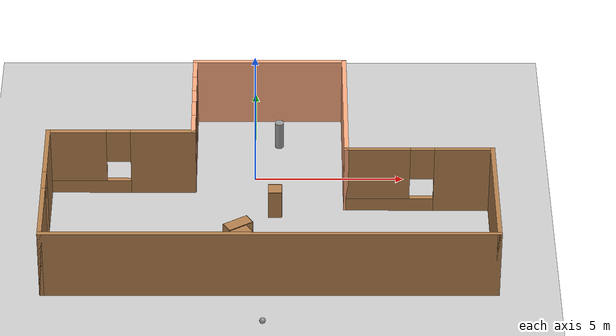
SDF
<sdf version="1.6">
 <world name="default">
  <plugin name="project1" filename="libproject1.so"/>
  <light name="sun" type="directional">
   <pose>0 0 10 0 -0 0</pose>
   <diffuse>0.8 0.8 0.8 1</diffuse>
   <specular>0.1 0.1 0.1 1</specular>
   <attenuation>
    <range>1000</range>
    <constant>0.9</constant>
    <linear>0.01</linear>
    <quadratic>0.001</quadratic>
   </attenuation>
   <direction>-0.5 0.5 -1</direction>
  </light>
  <model name="ground_plane">
   <static>1</static>
   <link name="link">
    <collision name="collision">
     <geometry><plane><normal>0 0 1</normal><size>100 100</size></plane></geometry>
     <surface><friction><ode><mu>100</mu><mu2>50</mu2></ode></friction></surface>
    </collision>
    <visual name="visual">
     <cast_shadows>0</cast_shadows>
     <geometry><plane><normal>0 0 1</normal><size>100 100</size></plane></geometry>
     <material>
      <script><uri>file://media/materials/scripts/gazebo.material</uri><name>Gazebo/Grey</name></script>
     </material>
    </visual>
   </link>
  </model>
  <gravity>0 0 -9.8</gravity>
  <magnetic_field>6e-06 2.3e-05 -4.2e-05</magnetic_field>
  <atmosphere type="adiabatic"/>
  <physics name="default_physics" default="0" type="ode">
   <max_step_size>0.001</max_step_size>
   <real_time_factor>1</real_time_factor>
   <real_time_update_rate>1000</real_time_update_rate>
  </physics>
  <scene><ambient>0.4 0.4 0.4 1</ambient><background>0.7 0.7 0.7 1</background><shadows>1</shadows></scene>
  <spherical_coordinates>
   <surface_model>EARTH_WGS84</surface_model>
   <latitude_deg>0</latitude_deg>
   <longitude_deg>0</longitude_deg>
   <elevation>0</elevation>
   <heading_deg>0</heading_deg>
  </spherical_coordinates>
  <model name="mybuilding">
   <pose>0.47861 -1.41522 0 0 -0 0</pose>
   <link name="Wall_13">
    <collision name="Wall_13_Collision">
     <geometry><box><size>4.75 0.15 2.5</size></box></geometry>
     <pose>0 0 1.25 0 -0 0</pose>
    </collision>
    <visual name="Wall_13_Visual">
     <pose>0 0 1.25 0 -0 0</pose>
     <geometry><box><size>4.75 0.15 2.5</size></box></geometry>
     <material>
      <script><uri>file://media/materials/scripts/gazebo.material</uri><name>Gazebo/Wood</name></script>
      <ambient>1 1 1 1</ambient>
     </material>
    </visual>
    <pose>7.4 -2.55 0 0 -0 1.5708</pose>
   </link>
   <link name="Wall_14">
    <pose>4.975 -0.25 0 0 -0 3.14159</pose>
    <visual name="Wall_14_Visual_0">
     <pose>-1.4975 0 1.25 0 -0 0</pose>
     <geometry><box><size>2.005 0.15 2.5</size></box></geometry>
     <material>
      <script><uri>file://media/materials/scripts/gazebo.material</uri><name>Gazebo/Wood</name></script>
      <ambient>1 1 1 1</ambient>
     </material>
    </visual>
    <collision name="Wall_14_Collision_0">
     <geometry><box><size>2.005 0.15 2.5</size></box></geometry>
     <pose>-1.4975 0 1.25 0 -0 0</pose>
    </collision>
    <visual name="Wall_14_Visual_1">
     <pose>1.0025 0 0.25 0 -0 0</pose>
     <geometry><box><size>2.995 0.15 0.5</size></box></geometry>
     <material>
      <script><uri>file://media/materials/scripts/gazebo.material</uri><name>Gazebo/Wood</name></script>
      <ambient>1 1 1 1</ambient>
     </material>
    </visual>
    <collision name="Wall_14_Collision_1">
     <geometry><box><size>2.995 0.15 0.5</size></box></geometry>
     <pose>1.0025 0 0.25 0 -0 0</pose>
    </collision>
    <visual name="Wall_14_Visual_2">
     <pose>1.4025 0 1.5 0 -0 0</pose>
     <geometry><box><size>2.195 0.15 2</size></box></geometry>
     <material>
      <script><uri>file://media/materials/scripts/gazebo.material</uri><name>Gazebo/Wood</name></script>
      <ambient>1 1 1 1</ambient>
     </material>
    </visual>
    <collision name="Wall_14_Collision_2">
     <geometry><box><size>2.195 0.15 2</size></box></geometry>
     <pose>1.4025 0 1.5 0 -0 0</pose>
    </collision>
    <visual name="Wall_14_Visual_3">
     <pose>-0.095 0 1.9 0 -0 0</pose>
     <geometry><box><size>0.8 0.15 1.2</size></box></geometry>
     <material>
      <script><uri>file://media/materials/scripts/gazebo.material</uri><name>Gazebo/Wood</name></script>
      <ambient>1 1 1 1</ambient>
     </material>
    </visual>
    <collision name="Wall_14_Collision_3">
     <geometry><box><size>0.8 0.15 1.2</size></box></geometry>
     <pose>-0.095 0 1.9 0 -0 0</pose>
    </collision>
   </link>
   <link name="Wall_18">
    <collision name="Wall_18_Collision">
     <geometry><box><size>5.25 0.15 2.5</size></box></geometry>
     <pose>0 0 1.25 0 -0 0</pose>
    </collision>
    <visual name="Wall_18_Visual">
     <pose>0 0 1.25 0 -0 0</pose>
     <geometry><box><size>5.25 0.15 2.5</size></box></geometry>
     <material>
      <script><uri>file://media/materials/scripts/gazebo.material</uri><name>Gazebo/Grey</name></script>
      <ambient>1 0.666667 0.498039 1</ambient>
     </material>
    </visual>
    <pose>2.55 2.3 0 0 -0 1.5708</pose>
   </link>
   <link name="Wall_21">
    <collision name="Wall_21_Collision">
     <geometry><box><size>5.25 0.15 2.5</size></box></geometry>
     <pose>0 0 1.25 0 -0 0</pose>
    </collision>
    <visual name="Wall_21_Visual">
     <pose>0 0 1.25 0 -0 0</pose>
     <geometry><box><size>5.25 0.15 2.5</size></box></geometry>
     <material>
      <script><uri>file://media/materials/scripts/gazebo.material</uri><name>Gazebo/Grey</name></script>
      <ambient>1 0.666667 0.498039 1</ambient>
     </material>
    </visual>
    <pose>0 4.85 0 0 -0 3.14159</pose>
   </link>
   <link name="Wall_23">
    <pose>-2.55 2.8 0 0 0 -1.5708</pose>
    <visual name="Wall_23_Visual_0">
     <pose>-1.6175 0 1.25 0 -0 0</pose>
     <geometry><box><size>1.015 0.15 2.5</size></box></geometry>
     <material>
      <script><uri>file://media/materials/scripts/gazebo.material</uri><name>Gazebo/Grey</name></script>
      <ambient>1 0.666667 0.498039 1</ambient>
     </material>
    </visual>
    <collision name="Wall_23_Collision_0">
     <geometry><box><size>1.015 0.15 2.5</size></box></geometry>
     <pose>-1.6175 0 1.25 0 -0 0</pose>
    </collision>
    <visual name="Wall_23_Visual_1">
     <pose>0.5075 0 0.25 0 -0 0</pose>
     <geometry><box><size>3.235 0.15 0.5</size></box></geometry>
     <material>
      <script><uri>file://media/materials/scripts/gazebo.material</uri><name>Gazebo/Grey</name></script>
      <ambient>1 0.666667 0.498039 1</ambient>
     </material>
    </visual>
    <collision name="Wall_23_Collision_1">
     <geometry><box><size>3.235 0.15 0.5</size></box></geometry>
     <pose>0.5075 0 0.25 0 -0 0</pose>
    </collision>
    <visual name="Wall_23_Visual_2">
     <pose>0.015 0 1.5 0 -0 0</pose>
     <geometry><box><size>0.65 0.15 2</size></box></geometry>
     <material>
      <script><uri>file://media/materials/scripts/gazebo.material</uri><name>Gazebo/Grey</name></script>
      <ambient>1 0.666667 0.498039 1</ambient>
     </material>
    </visual>
    <collision name="Wall_23_Collision_2">
     <geometry><box><size>0.65 0.15 2</size></box></geometry>
     <pose>0.015 0 1.5 0 -0 0</pose>
    </collision>
    <visual name="Wall_23_Visual_3">
     <pose>1.6325 0 1.5 0 -0 0</pose>
     <geometry><box><size>0.985 0.15 2</size></box></geometry>
     <material>
      <script><uri>file://media/materials/scripts/gazebo.material</uri><name>Gazebo/Grey</name></script>
      <ambient>1 0.666667 0.498039 1</ambient>
     </material>
    </visual>
    <collision name="Wall_23_Collision_3">
     <geometry><box><size>0.985 0.15 2</size></box></geometry>
     <pose>1.6325 0 1.5 0 -0 0</pose>
    </collision>
    <visual name="Wall_23_Visual_4">
     <pose>-0.71 0 1.9 0 -0 0</pose>
     <geometry><box><size>0.8 0.15 1.2</size></box></geometry>
     <material>
      <script><uri>file://media/materials/scripts/gazebo.material</uri><name>Gazebo/Grey</name></script>
      <ambient>1 0.666667 0.498039 1</ambient>
     </material>
    </visual>
    <collision name="Wall_23_Collision_4">
     <geometry><box><size>0.8 0.15 1.2</size></box></geometry>
     <pose>-0.71 0 1.9 0 -0 0</pose>
    </collision>
    <visual name="Wall_23_Visual_5">
     <pose>0.74 0 1.9 0 -0 0</pose>
     <geometry><box><size>0.8 0.15 1.2</size></box></geometry>
     <material>
      <script><uri>file://media/materials/scripts/gazebo.material</uri><name>Gazebo/Grey</name></script>
      <ambient>1 0.666667 0.498039 1</ambient>
     </material>
    </visual>
    <collision name="Wall_23_Collision_5">
     <geometry><box><size>0.8 0.15 1.2</size></box></geometry>
     <pose>0.74 0 1.9 0 -0 0</pose>
    </collision>
   </link>
   <link name="Wall_29">
    <pose>-4.975 0.75 0 0 -0 3.14159</pose>
    <visual name="Wall_29_Visual_0">
     <pose>-1.4075 0 1.25 0 -0 0</pose>
     <geometry><box><size>2.185 0.15 2.5</size></box></geometry>
     <material>
      <script><uri>file://media/materials/scripts/gazebo.material</uri><name>Gazebo/Wood</name></script>
      <ambient>1 1 1 1</ambient>
     </material>
    </visual>
    <collision name="Wall_29_Collision_0">
     <geometry><box><size>2.185 0.15 2.5</size></box></geometry>
     <pose>-1.4075 0 1.25 0 -0 0</pose>
    </collision>
    <visual name="Wall_29_Visual_1">
     <pose>1.0925 0 0.25 0 -0 0</pose>
     <geometry><box><size>2.815 0.15 0.5</size></box></geometry>
     <material>
      <script><uri>file://media/materials/scripts/gazebo.material</uri><name>Gazebo/Wood</name></script>
      <ambient>1 1 1 1</ambient>
     </material>
    </visual>
    <collision name="Wall_29_Collision_1">
     <geometry><box><size>2.815 0.15 0.5</size></box></geometry>
     <pose>1.0925 0 0.25 0 -0 0</pose>
    </collision>
    <visual name="Wall_29_Visual_2">
     <pose>1.4925 0 1.5 0 -0 0</pose>
     <geometry><box><size>2.015 0.15 2</size></box></geometry>
     <material>
      <script><uri>file://media/materials/scripts/gazebo.material</uri><name>Gazebo/Wood</name></script>
      <ambient>1 1 1 1</ambient>
     </material>
    </visual>
    <collision name="Wall_29_Collision_2">
     <geometry><box><size>2.015 0.15 2</size></box></geometry>
     <pose>1.4925 0 1.5 0 -0 0</pose>
    </collision>
    <visual name="Wall_29_Visual_3">
     <pose>0.085 0 1.9 0 -0 0</pose>
     <geometry><box><size>0.8 0.15 1.2</size></box></geometry>
     <material>
      <script><uri>file://media/materials/scripts/gazebo.material</uri><name>Gazebo/Wood</name></script>
      <ambient>1 1 1 1</ambient>
     </material>
    </visual>
    <collision name="Wall_29_Collision_3">
     <geometry><box><size>0.8 0.15 1.2</size></box></geometry>
     <pose>0.085 0 1.9 0 -0 0</pose>
    </collision>
   </link>
   <link name="Wall_30">
    <pose>-7.4 -2.05 0 0 0 -1.5708</pose>
    <visual name="Wall_30_Visual_0">
     <pose>-1.6925 0 1.25 0 -0 0</pose>
     <geometry><box><size>2.365 0.15 2.5</size></box></geometry>
     <material>
      <script><uri>file://media/materials/scripts/gazebo.material</uri><name>Gazebo/Wood</name></script>
      <ambient>1 1 1 1</ambient>
     </material>
    </visual>
    <collision name="Wall_30_Collision_0">
     <geometry><box><size>2.365 0.15 2.5</size></box></geometry>
     <pose>-1.6925 0 1.25 0 -0 0</pose>
    </collision>
    <visual name="Wall_30_Visual_1">
     <pose>1.6325 0 1.25 0 -0 0</pose>
     <geometry><box><size>2.485 0.15 2.5</size></box></geometry>
     <material>
      <script><uri>file://media/materials/scripts/gazebo.material</uri><name>Gazebo/Wood</name></script>
      <ambient>1 1 1 1</ambient>
     </material>
    </visual>
    <collision name="Wall_30_Collision_1">
     <geometry><box><size>2.485 0.15 2.5</size></box></geometry>
     <pose>1.6325 0 1.25 0 -0 0</pose>
    </collision>
    <visual name="Wall_30_Visual_2">
     <pose>-0.06 0 2.25 0 -0 0</pose>
     <geometry><box><size>0.9 0.15 0.5</size></box></geometry>
     <material>
      <script><uri>file://media/materials/scripts/gazebo.material</uri><name>Gazebo/Wood</name></script>
      <ambient>1 1 1 1</ambient>
     </material>
    </visual>
    <collision name="Wall_30_Collision_2">
     <geometry><box><size>0.9 0.15 0.5</size></box></geometry>
     <pose>-0.06 0 2.25 0 -0 0</pose>
    </collision>
   </link>
   <link name="Wall_31">
    <collision name="Wall_31_Collision">
     <geometry><box><size>14.95 0.15 2.5</size></box></geometry>
     <pose>0 0 1.25 0 -0 0</pose>
    </collision>
    <visual name="Wall_31_Visual">
     <pose>0 0 1.25 0 -0 0</pose>
     <geometry><box><size>14.95 0.15 2.5</size></box></geometry>
     <material>
      <script><uri>file://media/materials/scripts/gazebo.material</uri><name>Gazebo/Wood</name></script>
      <ambient>1 1 1 1</ambient>
     </material>
    </visual>
    <pose>0 -4.85 0 0 -0 0</pose>
   </link>
   <static>1</static>
  </model>
  <model name="cabinet">
   <static>1</static>
   <link name="cabinet_bottom_plate">
    <inertial>
     <pose>0 0 -1 0 -0 0</pose>
     <inertia><ixx>2.05</ixx><ixy>0</ixy><ixz>0</ixz><iyy>2.05</iyy><iyz>0</iyz><izz>2.05</izz></inertia>
     <mass>25</mass>
    </inertial>
    <collision name="cabinet_bottom_plate_geom">
     <pose>0 0 0.01 0 -0 0</pose>
     <geometry><box><size>0.45 0.45 0.02</size></box></geometry>
    </collision>
    <visual name="cabinet_bottom_plate_geom_visual">
     <pose>0 0 0.01 0 -0 0</pose>
     <geometry><box><size>0.45 0.45 0.02</size></box></geometry>
     <material>
      <script><uri>file://media/materials/scripts/gazebo.material</uri><name>Gazebo/Wood</name></script>
     </material>
    </visual>
    <collision name="cabinet_bottom_plate_geom_cabinet_back_plate">
     <pose>0.235 0 0.51 0 -0 0</pose>
     <geometry><box><size>0.02 0.45 1.02</size></box></geometry>
    </collision>
    <visual name="cabinet_bottom_plate_geom_cabinet_back_plate_visual">
     <pose>0.235 0 0.51 0 -0 0</pose>
     <geometry><box><size>0.02 0.45 1.02</size></box></geometry>
     <material>
      <script><uri>file://media/materials/scripts/gazebo.material</uri><name>Gazebo/Wood</name></script>
     </material>
    </visual>
    <collision name="cabinet_bottom_plate_geom_cabinet_left_plate">
     <pose>0 0.235 0.51 0 -0 0</pose>
     <geometry><box><size>0.45 0.02 1.02</size></box></geometry>
    </collision>
    <visual name="cabinet_bottom_plate_geom_cabinet_left_plate_visual">
     <pose>0 0.235 0.51 0 -0 0</pose>
     <geometry><box><size>0.45 0.02 1.02</size></box></geometry>
     <material>
      <script><uri>file://media/materials/scripts/gazebo.material</uri><name>Gazebo/Wood</name></script>
     </material>
    </visual>
    <collision name="cabinet_bottom_plate_geom_cabinet_middle_plate">
     <pose>0 0 0.51 0 -0 0</pose>
     <geometry><box><size>0.45 0.45 0.02</size></box></geometry>
    </collision>
    <visual name="cabinet_bottom_plate_geom_cabinet_middle_plate_visual">
     <pose>0 0 0.51 0 -0 0</pose>
     <geometry><box><size>0.45 0.45 0.02</size></box></geometry>
     <material>
      <script><uri>file://media/materials/scripts/gazebo.material</uri><name>Gazebo/Wood</name></script>
     </material>
    </visual>
    <collision name="cabinet_bottom_plate_geom_cabinet_right_plate">
     <pose>0 -0.235 0.51 0 -0 0</pose>
     <geometry><box><size>0.45 0.02 1.02</size></box></geometry>
    </collision>
    <visual name="cabinet_bottom_plate_geom_cabinet_right_plate_visual">
     <pose>0 -0.235 0.51 0 -0 0</pose>
     <geometry><box><size>0.45 0.02 1.02</size></box></geometry>
     <material>
      <script><uri>file://media/materials/scripts/gazebo.material</uri><name>Gazebo/Wood</name></script>
     </material>
    </visual>
    <collision name="cabinet_bottom_plate_geom_cabinet_top_plate">
     <pose>0 0 1.01 0 -0 0</pose>
     <geometry><box><size>0.45 0.45 0.02</size></box></geometry>
    </collision>
    <visual name="cabinet_bottom_plate_geom_cabinet_top_plate_visual">
     <pose>0 0 1.01 0 -0 0</pose>
     <geometry><box><size>0.45 0.45 0.02</size></box></geometry>
     <material>
      <script><uri>file://media/materials/scripts/gazebo.material</uri><name>Gazebo/Wood</name></script>
     </material>
    </visual>
   </link>
   <pose>0.654918 -1.88828 0 0 -0 0</pose>
  </model>
  <model name="bookshelf">
   <static>1</static>
   <link name="link">
    <inertial><mass>1</mass></inertial>
    <collision name="back">
     <pose>0 0.005 0.6 0 -0 0</pose>
     <geometry><box><size>0.9 0.01 1.2</size></box></geometry>
    </collision>
    <visual name="visual1">
     <pose>0 0.005 0.6 0 -0 0</pose>
     <geometry><box><size>0.9 0.01 1.2</size></box></geometry>
     <material>
      <script><uri>file://media/materials/scripts/gazebo.material</uri><name>Gazebo/Wood</name></script>
     </material>
    </visual>
    <collision name="left_side">
     <pose>0.45 -0.195 0.6 0 -0 0</pose>
     <geometry><box><size>0.02 0.4 1.2</size></box></geometry>
    </collision>
    <visual name="visual2">
     <pose>0.45 -0.195 0.6 0 -0 0</pose>
     <geometry><box><size>0.02 0.4 1.2</size></box></geometry>
     <material>
      <script><uri>file://media/materials/scripts/gazebo.material</uri><name>Gazebo/Wood</name></script>
     </material>
    </visual>
    <collision name="right_side">
     <pose>-0.45 -0.195 0.6 0 -0 0</pose>
     <geometry><box><size>0.02 0.4 1.2</size></box></geometry>
    </collision>
    <visual name="visual3">
     <pose>-0.45 -0.195 0.6 0 -0 0</pose>
     <geometry><box><size>0.02 0.4 1.2</size></box></geometry>
     <material>
      <script><uri>file://media/materials/scripts/gazebo.material</uri><name>Gazebo/Wood</name></script>
     </material>
    </visual>
    <collision name="bottom">
     <pose>0 -0.195 0.03 0 -0 0</pose>
     <geometry><box><size>0.88 0.4 0.06</size></box></geometry>
    </collision>
    <visual name="visual4">
     <pose>0 -0.195 0.03 0 -0 0</pose>
     <geometry><box><size>0.88 0.4 0.06</size></box></geometry>
     <material>
      <script><uri>file://media/materials/scripts/gazebo.material</uri><name>Gazebo/Wood</name></script>
     </material>
    </visual>
    <collision name="top">
     <pose>0 -0.195 1.19 0 -0 0</pose>
     <geometry><box><size>0.88 0.4 0.02</size></box></geometry>
    </collision>
    <visual name="visual5">
     <pose>0 -0.195 1.19 0 -0 0</pose>
     <geometry><box><size>0.88 0.4 0.02</size></box></geometry>
     <material>
      <script><uri>file://media/materials/scripts/gazebo.material</uri><name>Gazebo/Wood</name></script>
     </material>
    </visual>
    <collision name="low_shelf">
     <pose>0 -0.195 0.43 0 -0 0</pose>
     <geometry><box><size>0.88 0.4 0.02</size></box></geometry>
    </collision>
    <visual name="visual6">
     <pose>0 -0.195 0.43 0 -0 0</pose>
     <geometry><box><size>0.88 0.4 0.02</size></box></geometry>
     <material>
      <script><uri>file://media/materials/scripts/gazebo.material</uri><name>Gazebo/Wood</name></script>
     </material>
    </visual>
    <collision name="high_shelf">
     <pose>0 -0.195 0.8 0 -0 0</pose>
     <geometry><box><size>0.88 0.4 0.02</size></box></geometry>
    </collision>
    <visual name="visual7">
     <pose>0 -0.195 0.8 0 -0 0</pose>
     <geometry><box><size>0.88 0.4 0.02</size></box></geometry>
     <material>
      <script><uri>file://media/materials/scripts/gazebo.material</uri><name>Gazebo/Wood</name></script>
     </material>
    </visual>
   </link>
   <pose>-0.661056 -3.84447 0 0 -0 0.551219</pose>
  </model>
  <model name="my_ball">
   <link name="link_0">
    <inertial>
     <mass>1</mass>
     <inertia><ixx>0.1</ixx><ixy>0</ixy><ixz>0</ixz><iyy>0.1</iyy><iyz>0</iyz><izz>0.1</izz></inertia>
    </inertial>
    <visual name="visual">
     <geometry><sphere><radius>0.1</radius></sphere></geometry>
     <material>
      <lighting>1</lighting>
      <script><uri>file://media/materials/scripts/gazebo.material</uri><name>Gazebo/Grey</name></script>
      <ambient>1 1 1 1</ambient>
      <diffuse>1 1 1 1</diffuse>
      <specular>1 1 1 1</specular>
      <emissive>1 1 1 1</emissive>
      <shader type="vertex"><normal_map>__default__</normal_map></shader>
     </material>
    </visual>
    <collision name="collision">
     <geometry><sphere><radius>0.1</radius></sphere></geometry>
     <surface>
      <friction>
       <ode><mu>1</mu><mu2>1</mu2><fdir1>0 0 0</fdir1><slip1>0</slip1><slip2>0</slip2></ode>
       <torsional>
        <coefficient>1</coefficient>
        <patch_radius>0</patch_radius>
        <surface_radius>0</surface_radius>
        <use_patch_radius>1</use_patch_radius>
        <ode><slip>0</slip></ode>
       </torsional>
      </friction>
      <bounce><restitution_coefficient>0</restitution_coefficient><threshold>1e+06</threshold></bounce>
      <contact>
       <collide_without_contact>0</collide_without_contact>
       <collide_without_contact_bitmask>1</collide_without_contact_bitmask>
       <collide_bitmask>1</collide_bitmask>
       <ode>
        <soft_cfm>0</soft_cfm>
        <soft_erp>0.2</soft_erp>
        <kp>1e+13</kp>
        <kd>1</kd>
        <max_vel>0.01</max_vel>
        <min_depth>0</min_depth>
       </ode>
       <bullet>
        <split_impulse>1</split_impulse>
        <split_impulse_penetration_threshold>-0.01</split_impulse_penetration_threshold>
        <soft_cfm>0</soft_cfm>
        <soft_erp>0.2</soft_erp>
        <kp>1e+13</kp>
        <kd>1</kd>
       </bullet>
      </contact>
     </surface>
    </collision>
   </link>
   <static>0</static>
   <pose>0.254329 -7.74627 0.1 0 -0 0</pose>
  </model>
  <model name="unit_cylinder_0_0">
   <link name="link">
    <pose>-0.36651 -0.184528 -0 0 -0 0</pose>
    <inertial>
     <mass>1</mass>
     <inertia><ixx>0.145833</ixx><ixy>0</ixy><ixz>0</ixz><iyy>0.145833</iyy><iyz>0</iyz><izz>0.125</izz></inertia>
    </inertial>
    <visual name="visual">
     <geometry><cylinder><radius>0.15</radius><length>1</length></cylinder></geometry>
     <material>
      <script><name>Gazebo/Grey</name><uri>file://media/materials/scripts/gazebo.material</uri></script>
      <ambient>0.3 0.3 0.3 1</ambient>
      <diffuse>0.7 0.7 0.7 1</diffuse>
      <specular>0.01 0.01 0.01 1</specular>
      <emissive>0 0 0 1</emissive>
      <shader type="vertex"><normal_map>__default__</normal_map></shader>
     </material>
    </visual>
    <collision name="collision">
     <geometry><cylinder><radius>0.15</radius><length>1</length></cylinder></geometry>
     <surface>
      <friction>
       <ode><mu>1</mu><mu2>1</mu2><fdir1>0 0 0</fdir1><slip1>0</slip1><slip2>0</slip2></ode>
       <torsional>
        <coefficient>1</coefficient>
        <patch_radius>0</patch_radius>
        <surface_radius>0</surface_radius>
        <use_patch_radius>1</use_patch_radius>
        <ode><slip>0</slip></ode>
       </torsional>
      </friction>
      <bounce><restitution_coefficient>0</restitution_coefficient><threshold>1e+06</threshold></bounce>
      <contact>
       <collide_without_contact>0</collide_without_contact>
       <collide_without_contact_bitmask>1</collide_without_contact_bitmask>
       <collide_bitmask>1</collide_bitmask>
       <ode>
        <soft_cfm>0</soft_cfm>
        <soft_erp>0.2</soft_erp>
        <kp>1e+13</kp>
        <kd>1</kd>
        <max_vel>0.01</max_vel>
        <min_depth>0</min_depth>
       </ode>
       <bullet>
        <split_impulse>1</split_impulse>
        <split_impulse_penetration_threshold>-0.01</split_impulse_penetration_threshold>
        <soft_cfm>0</soft_cfm>
        <soft_erp>0.2</soft_erp>
        <kp>1e+13</kp>
        <kd>1</kd>
       </bullet>
      </contact>
     </surface>
    </collision>
   </link>
   <static>0</static>
   <pose>1.17898 2.10156 0.499999 0 0 -4e-06</pose>
  </model>
 </world>
</sdf>
